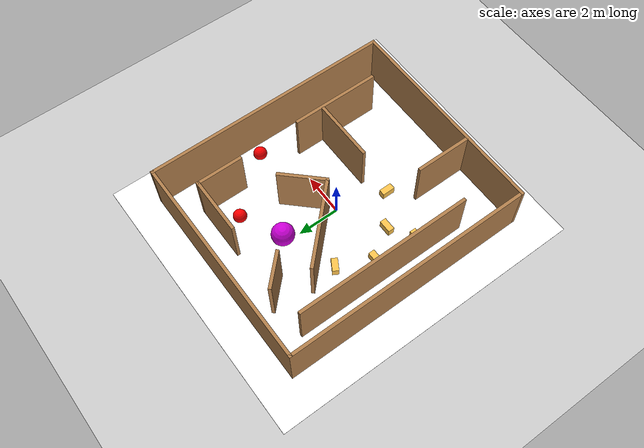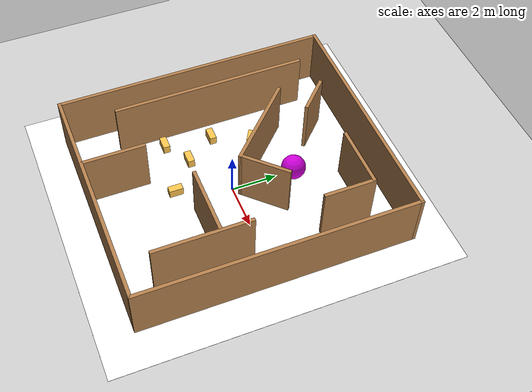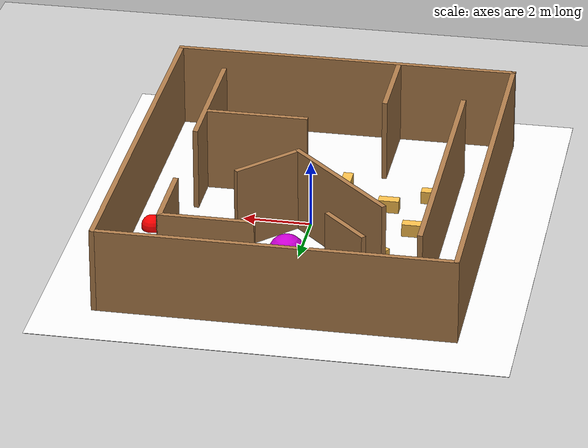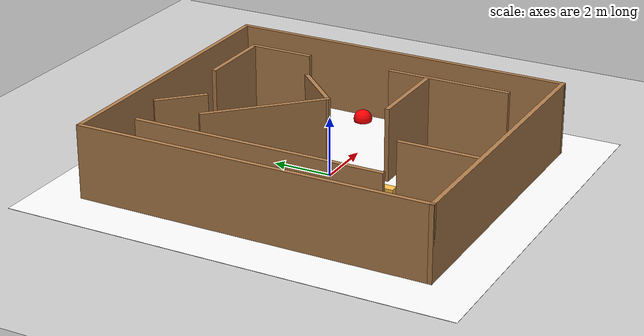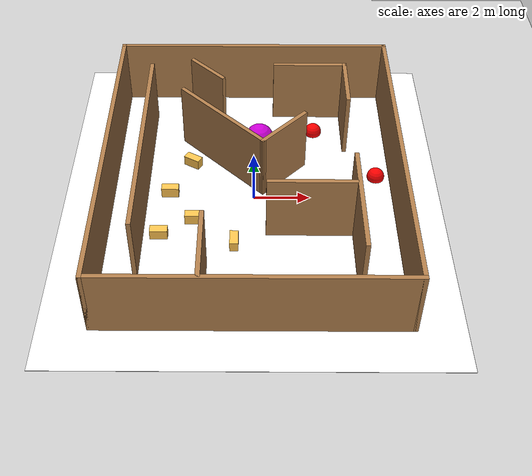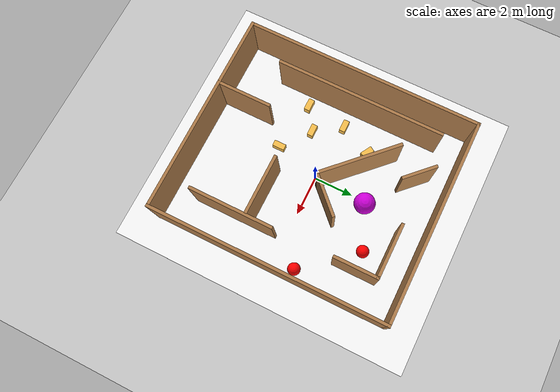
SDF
<sdf version="1.7">
 <world name="default">
  <light name="sun" type="directional">
   <pose>0 0 10 0 -0 0</pose>
   <diffuse>0.8 0.8 0.8 1</diffuse>
   <specular>0.2 0.2 0.2 1</specular>
   <attenuation>
    <range>1000</range>
    <constant>0.9</constant>
    <linear>0.01</linear>
    <quadratic>0.001</quadratic>
   </attenuation>
   <direction>-0.5 0.1 -0.9</direction>
   <spot><inner_angle>0</inner_angle><outer_angle>0</outer_angle><falloff>0</falloff></spot>
  </light>
  <model name="ground_plane">
   <static>1</static>
   <link name="link">
    <collision name="collision">
     <geometry><plane><normal>0 0 1</normal><size>100 100</size></plane></geometry>
     <surface>
      <contact><collide_bitmask>65535</collide_bitmask></contact>
      <friction><ode><mu>100</mu><mu2>50</mu2></ode></friction>
     </surface>
    </collision>
    <visual name="visual">
     <cast_shadows>0</cast_shadows>
     <geometry><plane><normal>0 0 1</normal><size>100 100</size></plane></geometry>
     <material>
      <script><uri>file://media/materials/scripts/gazebo.material</uri><name>Gazebo/Grey</name></script>
     </material>
    </visual>
   </link>
  </model>
  <gravity>0 0 -9.8</gravity>
  <magnetic_field>6e-06 2.3e-05 -4.2e-05</magnetic_field>
  <atmosphere type="adiabatic"/>
  <physics type="ode">
   <max_step_size>0.001</max_step_size>
   <real_time_factor>1</real_time_factor>
   <real_time_update_rate>1000</real_time_update_rate>
  </physics>
  <scene><ambient>0.4 0.4 0.4 1</ambient><background>0.7 0.7 0.7 1</background><shadows>1</shadows></scene>
  <spherical_coordinates>
   <surface_model>EARTH_WGS84</surface_model>
   <latitude_deg>0</latitude_deg>
   <longitude_deg>0</longitude_deg>
   <elevation>0</elevation>
   <heading_deg>0</heading_deg>
  </spherical_coordinates>
  <model name="env01">
   <pose>-0.01781 0.043684 0 0 -0 0</pose>
   <link name="Wall_0">
    <collision name="Wall_0_Collision">
     <geometry><box><size>12 0.15 2.5</size></box></geometry>
     <pose>0 0 1.25 0 -0 0</pose>
    </collision>
    <visual name="Wall_0_Visual">
     <pose>0 0 1.25 0 -0 0</pose>
     <geometry><box><size>12 0.15 2.5</size></box></geometry>
     <material>
      <script><uri>file://media/materials/scripts/gazebo.material</uri><name>Gazebo/Wood</name></script>
      <ambient>1 1 1 1</ambient>
     </material>
     <meta><layer>0</layer></meta>
    </visual>
    <pose>-5.05 -0 0 0 -0 1.5708</pose>
   </link>
   <link name="Wall_17">
    <collision name="Wall_17_Collision">
     <geometry><box><size>1.75 0.15 2.5</size></box></geometry>
     <pose>0 0 1.25 0 -0 0</pose>
    </collision>
    <visual name="Wall_17_Visual">
     <pose>0 0 1.25 0 -0 0</pose>
     <geometry><box><size>1.75 0.15 2.5</size></box></geometry>
     <material>
      <script><uri>file://media/materials/scripts/gazebo.material</uri><name>Gazebo/Wood</name></script>
      <ambient>1 1 1 1</ambient>
     </material>
     <meta><layer>0</layer></meta>
    </visual>
    <pose>-1.72956 4.38227 0 0 -0 2.35619</pose>
   </link>
   <link name="Wall_19">
    <collision name="Wall_19_Collision">
     <geometry><box><size>2.75 0.15 2.5</size></box></geometry>
     <pose>0 0 1.25 0 -0 0</pose>
    </collision>
    <visual name="Wall_19_Visual">
     <pose>0 0 1.25 0 -0 0</pose>
     <geometry><box><size>2.75 0.15 2.5</size></box></geometry>
     <material>
      <script><uri>file://media/materials/scripts/gazebo.material</uri><name>Gazebo/Wood</name></script>
      <ambient>1 1 1 1</ambient>
     </material>
     <meta><layer>0</layer></meta>
    </visual>
    <pose>2.13114 4.66779 0 0 -0 0</pose>
   </link>
   <link name="Wall_20">
    <collision name="Wall_20_Collision">
     <geometry><box><size>2.25 0.15 2.5</size></box></geometry>
     <pose>0 0 1.25 0 -0 0</pose>
    </collision>
    <visual name="Wall_20_Visual">
     <pose>0 0 1.25 0 -0 0</pose>
     <geometry><box><size>2.25 0.15 2.5</size></box></geometry>
     <material>
      <script><uri>file://media/materials/scripts/gazebo.material</uri><name>Gazebo/Wood</name></script>
      <ambient>1 1 1 1</ambient>
     </material>
     <meta><layer>0</layer></meta>
    </visual>
    <pose>3.43114 3.61779 0 0 -0 -1.5708</pose>
   </link>
   <link name="Wall_23">
    <collision name="Wall_23_Collision">
     <geometry><box><size>4.25 0.15 2.5</size></box></geometry>
     <pose>0 0 1.25 0 -0 0</pose>
    </collision>
    <visual name="Wall_23_Visual">
     <pose>0 0 1.25 0 -0 0</pose>
     <geometry><box><size>4.25 0.15 2.5</size></box></geometry>
     <material>
      <script><uri>file://media/materials/scripts/gazebo.material</uri><name>Gazebo/Wood</name></script>
      <ambient>1 1 1 1</ambient>
     </material>
     <meta><layer>0</layer></meta>
    </visual>
    <pose>-1.1089 1.64899 0 0 -0 -0.785398</pose>
   </link>
   <link name="Wall_24">
    <collision name="Wall_24_Collision">
     <geometry><box><size>2.2637 0.15 2.5</size></box></geometry>
     <pose>0 0 1.25 0 -0 0</pose>
    </collision>
    <visual name="Wall_24_Visual">
     <pose>0 0 1.25 0 -0 0</pose>
     <geometry><box><size>2.2637 0.15 2.5</size></box></geometry>
     <material>
      <script><uri>file://media/materials/scripts/gazebo.material</uri><name>Gazebo/Wood</name></script>
      <ambient>1 1 1 1</ambient>
     </material>
     <meta><layer>0</layer></meta>
    </visual>
    <pose>1.07552 0.958968 0 0 -0 0.801918</pose>
   </link>
   <link name="Wall_29">
    <collision name="Wall_29_Collision">
     <geometry><box><size>4.25 0.15 2.5</size></box></geometry>
     <pose>0 0 1.25 0 -0 0</pose>
    </collision>
    <visual name="Wall_29_Visual">
     <pose>0 0 1.25 0 -0 0</pose>
     <geometry><box><size>4.25 0.15 2.5</size></box></geometry>
     <material>
      <script><uri>file://media/materials/scripts/gazebo.material</uri><name>Gazebo/Wood</name></script>
      <ambient>1 1 1 1</ambient>
     </material>
     <meta><layer>0</layer></meta>
    </visual>
    <pose>3.49116 -2.56925 0 0 -0 -1.5708</pose>
   </link>
   <link name="Wall_3">
    <collision name="Wall_3_Collision">
     <geometry><box><size>10.25 0.15 2.5</size></box></geometry>
     <pose>0 0 1.25 0 -0 0</pose>
    </collision>
    <visual name="Wall_3_Visual">
     <pose>0 0 1.25 0 -0 0</pose>
     <geometry><box><size>10.25 0.15 2.5</size></box></geometry>
     <material>
      <script><uri>file://media/materials/scripts/gazebo.material</uri><name>Gazebo/Wood</name></script>
      <ambient>1 1 1 1</ambient>
     </material>
     <meta><layer>0</layer></meta>
    </visual>
    <pose>-0 -5.925 0 0 -0 0</pose>
   </link>
   <link name="Wall_37">
    <collision name="Wall_37_Collision">
     <geometry><box><size>3 0.15 2.5</size></box></geometry>
     <pose>0 0 1.25 0 -0 0</pose>
    </collision>
    <visual name="Wall_37_Visual">
     <pose>0 0 1.25 0 -0 0</pose>
     <geometry><box><size>3 0.15 2.5</size></box></geometry>
     <material>
      <script><uri>file://media/materials/scripts/gazebo.material</uri><name>Gazebo/Wood</name></script>
      <ambient>1 1 1 1</ambient>
     </material>
     <meta><layer>0</layer></meta>
    </visual>
    <pose>1.93931 -1.84217 0 0 -0 0</pose>
   </link>
   <link name="Wall_39">
    <collision name="Wall_39_Collision">
     <geometry><box><size>2.75 0.15 2.5</size></box></geometry>
     <pose>0 0 1.25 0 -0 0</pose>
    </collision>
    <visual name="Wall_39_Visual">
     <pose>0 0 1.25 0 -0 0</pose>
     <geometry><box><size>2.75 0.15 2.5</size></box></geometry>
     <material>
      <script><uri>file://media/materials/scripts/gazebo.material</uri><name>Gazebo/Wood</name></script>
      <ambient>1 1 1 1</ambient>
     </material>
     <meta><layer>0</layer></meta>
    </visual>
    <pose>-1.6074 -4.5784 0 0 -0 1.5708</pose>
   </link>
   <link name="Wall_5">
    <collision name="Wall_5_Collision">
     <geometry><box><size>12 0.15 2.5</size></box></geometry>
     <pose>0 0 1.25 0 -0 0</pose>
    </collision>
    <visual name="Wall_5_Visual">
     <pose>0 0 1.25 0 -0 0</pose>
     <geometry><box><size>12 0.15 2.5</size></box></geometry>
     <material>
      <script><uri>file://media/materials/scripts/gazebo.material</uri><name>Gazebo/Wood</name></script>
      <ambient>1 1 1 1</ambient>
     </material>
     <meta><layer>0</layer></meta>
    </visual>
    <pose>5.05 -0 0 0 -0 1.5708</pose>
   </link>
   <link name="Wall_6">
    <collision name="Wall_6_Collision">
     <geometry><box><size>10.25 0.15 2.5</size></box></geometry>
     <pose>0 0 1.25 0 -0 0</pose>
    </collision>
    <visual name="Wall_6_Visual">
     <pose>0 0 1.25 0 -0 0</pose>
     <geometry><box><size>10.25 0.15 2.5</size></box></geometry>
     <material>
      <script><uri>file://media/materials/scripts/gazebo.material</uri><name>Gazebo/Wood</name></script>
      <ambient>1 1 1 1</ambient>
     </material>
     <meta><layer>0</layer></meta>
    </visual>
    <pose>-0 5.925 0 0 -0 3.14159</pose>
   </link>
   <link name="Wall_8">
    <collision name="Wall_8_Collision">
     <geometry><box><size>8.5 0.15 2.5</size></box></geometry>
     <pose>0 0 1.25 0 -0 0</pose>
    </collision>
    <visual name="Wall_8_Visual">
     <pose>0 0 1.25 0 -0 0</pose>
     <geometry><box><size>8.5 0.15 2.5</size></box></geometry>
     <material>
      <script><uri>file://media/materials/scripts/gazebo.material</uri><name>Gazebo/Wood</name></script>
      <ambient>1 1 1 1</ambient>
     </material>
     <meta><layer>0</layer></meta>
    </visual>
    <pose>-3.85049 0.412989 0 0 -0 -1.5708</pose>
   </link>
   <static>1</static>
  </model>
  <model name="sphere_rv">
   <link name="link_1">
    <pose>-0.019563 0.124282 0.530075 0 -0 0</pose>
    <inertial>
     <mass>149.284</mass>
     <inertia><ixx>16.8031</ixx><ixy>0</ixy><ixz>0</ixz><iyy>16.8031</iyy><iyz>0</iyz><izz>16.8031</izz></inertia>
    </inertial>
    <visual name="visual">
     <geometry><sphere><radius>0.530467</radius></sphere></geometry>
     <material>
      <lighting>1</lighting>
      <script><uri>file://media/materials/scripts/gazebo.material</uri><name>Gazebo/Grey</name></script>
      <ambient>0.816 0 0.855 1</ambient>
      <diffuse>0.816 0 0.855 1</diffuse>
      <specular>0 0 0 1</specular>
      <emissive>0 0 0 1</emissive>
      <shader type="vertex"><normal_map>__default__</normal_map></shader>
     </material>
    </visual>
    <collision name="collision">
     <geometry><sphere><radius>0.530467</radius></sphere></geometry>
     <surface>
      <friction>
       <ode><mu>1</mu><mu2>1</mu2><fdir1>0 0 0</fdir1><slip1>0</slip1><slip2>0</slip2></ode>
       <torsional>
        <coefficient>1</coefficient>
        <patch_radius>0</patch_radius>
        <surface_radius>0</surface_radius>
        <use_patch_radius>1</use_patch_radius>
        <ode><slip>0</slip></ode>
       </torsional>
      </friction>
      <bounce><restitution_coefficient>0</restitution_coefficient><threshold>1e+06</threshold></bounce>
      <contact>
       <collide_without_contact>0</collide_without_contact>
       <collide_without_contact_bitmask>1</collide_without_contact_bitmask>
       <collide_bitmask>1</collide_bitmask>
       <ode>
        <soft_cfm>0</soft_cfm>
        <soft_erp>0.2</soft_erp>
        <kp>1e+13</kp>
        <kd>1</kd>
        <max_vel>0.01</max_vel>
        <min_depth>0</min_depth>
       </ode>
       <bullet>
        <split_impulse>1</split_impulse>
        <split_impulse_penetration_threshold>-0.01</split_impulse_penetration_threshold>
        <soft_cfm>0</soft_cfm>
        <soft_erp>0.2</soft_erp>
        <kp>1e+13</kp>
        <kd>1</kd>
       </bullet>
      </contact>
     </surface>
    </collision>
   </link>
   <static>1</static>
   <pose>0.224885 2.61242 0 0 -0 0</pose>
  </model>
  <model name="Box_24x15M">
   <link name="Wall">
    <pose>0 0 0.1985 0 -0 0</pose>
    <inertial>
     <mass>5</mass>
     <inertia><ixx>0.1022</ixx><iyy>0.2197</iyy><izz>0.1905</izz><ixy>0</ixy><ixz>0</ixz><iyz>0</iyz></inertia>
    </inertial>
    <collision name="Wall_Collision"><geometry><box><size>0.608 0.296 0.397</size></box></geometry></collision>
    <visual name="Wall_Visual">
     <geometry><box><size>0.608 0.296 0.397</size></box></geometry>
     <material>
      <script><uri>file://media/materials/scripts/gazebo.material</uri><name>Gazebo/Grey</name></script>
      <ambient>1 0.764706 0.305882 1</ambient>
     </material>
    </visual>
   </link>
   <static>1</static>
   <pose>-0.658795 -2.32043 -0 0 0 -1.57</pose>
  </model>
  <model name="Floor_white">
   <link name="main">
    <pose>0.106276 0.320284 0.01 0 -0 0</pose>
    <inertial>
     <mass>0.126387</mass>
     <inertia><ixx>2.38743</ixx><ixy>0</ixy><ixz>0</ixz><iyy>1.90008</iyy><iyz>0</iyz><izz>4.28751</izz></inertia>
    </inertial>
    <visual name="main_Visual">
     <geometry><box><size>13.4315 15.0558 0.01</size></box></geometry>
     <material>
      <script>
       <uri>model://Floor/materials/scripts</uri>
       <uri>model://Floor/materials/textures</uri>
       <name>floor</name>
      </script>
      <shader type="pixel"><normal_map>__default__</normal_map></shader>
      <ambient>1 1 1 1</ambient>
      <diffuse>1 1 1 1</diffuse>
      <specular>0 0 0 1</specular>
      <emissive>0.94 0.94 0.94 0.9</emissive>
     </material>
    </visual>
    <collision name="main_Collision">
     <geometry><box><size>13.4315 15.0558 0.01</size></box></geometry>
     <surface>
      <friction>
       <ode><mu>1</mu><mu2>1</mu2><fdir1>0 0 0</fdir1><slip1>0</slip1><slip2>0</slip2></ode>
       <torsional>
        <coefficient>1</coefficient>
        <patch_radius>0</patch_radius>
        <surface_radius>0</surface_radius>
        <use_patch_radius>1</use_patch_radius>
        <ode><slip>0</slip></ode>
       </torsional>
      </friction>
      <bounce><restitution_coefficient>0</restitution_coefficient><threshold>1e+06</threshold></bounce>
      <contact>
       <collide_without_contact>0</collide_without_contact>
       <collide_without_contact_bitmask>1</collide_without_contact_bitmask>
       <collide_bitmask>1</collide_bitmask>
       <ode>
        <soft_cfm>0</soft_cfm>
        <soft_erp>0.2</soft_erp>
        <kp>1e+13</kp>
        <kd>1</kd>
        <max_vel>0.01</max_vel>
        <min_depth>0</min_depth>
       </ode>
       <bullet>
        <split_impulse>1</split_impulse>
        <split_impulse_penetration_threshold>-0.01</split_impulse_penetration_threshold>
        <soft_cfm>0</soft_cfm>
        <soft_erp>0.2</soft_erp>
        <kp>1e+13</kp>
        <kd>1</kd>
       </bullet>
      </contact>
     </surface>
    </collision>
   </link>
   <static>1</static>
   <pose>-0.155653 -0.245625 0 0 -0 0</pose>
  </model>
  <model name="Box_24x15M_clone">
   <link name="Wall">
    <pose>0 0 0.1985 0 -0 0</pose>
    <inertial>
     <mass>5</mass>
     <inertia><ixx>0.1022</ixx><iyy>0.2197</iyy><izz>0.1905</izz><ixy>0</ixy><ixz>0</ixz><iyz>0</iyz></inertia>
    </inertial>
    <collision name="Wall_Collision"><geometry><box><size>0.608 0.296 0.397</size></box></geometry></collision>
    <visual name="Wall_Visual">
     <geometry><box><size>0.608 0.296 0.397</size></box></geometry>
     <material>
      <script><uri>file://media/materials/scripts/gazebo.material</uri><name>Gazebo/Grey</name></script>
      <ambient>1 0.764706 0.305882 1</ambient>
     </material>
    </visual>
   </link>
   <static>1</static>
   <pose>-3.24021 -1.93596 0 0 -0 0.000796</pose>
  </model>
  <model name="Box_24x15M_clone_clone">
   <link name="Wall">
    <pose>0 0 0.1985 0 -0 0</pose>
    <inertial>
     <mass>5</mass>
     <inertia><ixx>0.1022</ixx><iyy>0.2197</iyy><izz>0.1905</izz><ixy>0</ixy><ixz>0</ixz><iyz>0</iyz></inertia>
    </inertial>
    <collision name="Wall_Collision"><geometry><box><size>0.608 0.296 0.397</size></box></geometry></collision>
    <visual name="Wall_Visual">
     <geometry><box><size>0.608 0.296 0.397</size></box></geometry>
     <material>
      <script><uri>file://media/materials/scripts/gazebo.material</uri><name>Gazebo/Grey</name></script>
      <ambient>1 0.764706 0.305882 1</ambient>
     </material>
    </visual>
   </link>
   <static>1</static>
   <pose>-2.08733 -1.19871 0 0 -0 0.000796</pose>
  </model>
  <model name="Box_24x15M_clone_clone_clone">
   <link name="Wall">
    <pose>0 0 0.1985 0 -0 0</pose>
    <inertial>
     <mass>5</mass>
     <inertia><ixx>0.1022</ixx><iyy>0.2197</iyy><izz>0.1905</izz><ixy>0</ixy><ixz>0</ixz><iyz>0</iyz></inertia>
    </inertial>
    <collision name="Wall_Collision"><geometry><box><size>0.608 0.296 0.397</size></box></geometry></collision>
    <visual name="Wall_Visual">
     <geometry><box><size>0.608 0.296 0.397</size></box></geometry>
     <material>
      <script><uri>file://media/materials/scripts/gazebo.material</uri><name>Gazebo/Grey</name></script>
      <ambient>1 0.764706 0.305882 1</ambient>
     </material>
    </visual>
   </link>
   <static>1</static>
   <pose>-2.24973 1.75892 0 0 0 -0.529333</pose>
  </model>
  <model name="Box_24x15M_clone_clone_clone_0">
   <link name="Wall">
    <pose>0 0 0.1985 0 -0 0</pose>
    <inertial>
     <mass>5</mass>
     <inertia><ixx>0.1022</ixx><iyy>0.2197</iyy><izz>0.1905</izz><ixy>0</ixy><ixz>0</ixz><iyz>0</iyz></inertia>
    </inertial>
    <collision name="Wall_Collision"><geometry><box><size>0.608 0.296 0.397</size></box></geometry></collision>
    <visual name="Wall_Visual">
     <geometry><box><size>0.608 0.296 0.397</size></box></geometry>
     <material>
      <script><uri>file://media/materials/scripts/gazebo.material</uri><name>Gazebo/Grey</name></script>
      <ambient>1 0.764706 0.305882 1</ambient>
     </material>
    </visual>
   </link>
   <static>1</static>
   <pose>-2.99306 0.145822 0 0 -0 0.000796</pose>
  </model>
  <model name="sphere_r_clone">
   <link name="link_1">
    <pose>0 0 0.1 0 -0 0</pose>
    <inertial>
     <mass>31.7115</mass>
     <inertia><ixx>1.2708</ixx><ixy>0</ixy><ixz>0</ixz><iyy>1.2708</iyy><iyz>0</iyz><izz>1.2708</izz></inertia>
    </inertial>
    <visual name="visual">
     <geometry><sphere><radius>0.316519</radius></sphere></geometry>
     <material>
      <lighting>1</lighting>
      <script><uri>file://media/materials/scripts/gazebo.material</uri><name>Gazebo/Grey</name></script>
      <ambient>1 0 0 1</ambient>
      <diffuse>1 0 0 1</diffuse>
      <specular>0 0 0 1</specular>
      <emissive>0 0 0 1</emissive>
      <shader type="vertex"><normal_map>__default__</normal_map></shader>
     </material>
    </visual>
    <collision name="collision">
     <geometry><sphere><radius>0.316519</radius></sphere></geometry>
     <surface>
      <friction>
       <ode><mu>1</mu><mu2>1</mu2><fdir1>0 0 0</fdir1><slip1>0</slip1><slip2>0</slip2></ode>
       <torsional>
        <coefficient>1</coefficient>
        <patch_radius>0</patch_radius>
        <surface_radius>0</surface_radius>
        <use_patch_radius>1</use_patch_radius>
        <ode><slip>0</slip></ode>
       </torsional>
      </friction>
      <bounce><restitution_coefficient>0</restitution_coefficient><threshold>1e+06</threshold></bounce>
      <contact>
       <collide_without_contact>0</collide_without_contact>
       <collide_without_contact_bitmask>1</collide_without_contact_bitmask>
       <collide_bitmask>1</collide_bitmask>
       <ode>
        <soft_cfm>0</soft_cfm>
        <soft_erp>0.2</soft_erp>
        <kp>1e+13</kp>
        <kd>1</kd>
        <max_vel>0.01</max_vel>
        <min_depth>0</min_depth>
       </ode>
       <bullet>
        <split_impulse>1</split_impulse>
        <split_impulse_penetration_threshold>-0.01</split_impulse_penetration_threshold>
        <soft_cfm>0</soft_cfm>
        <soft_erp>0.2</soft_erp>
        <kp>1e+13</kp>
        <kd>1</kd>
       </bullet>
      </contact>
     </surface>
    </collision>
   </link>
   <static>1</static>
   <pose>2.28091 3.6334 0 0 -0 0</pose>
  </model>
  <model name="sphere_r_clone_clone">
   <link name="link_1">
    <pose>0 0 0.1 0 -0 0</pose>
    <inertial>
     <mass>31.7115</mass>
     <inertia><ixx>1.2708</ixx><ixy>0</ixy><ixz>0</ixz><iyy>1.2708</iyy><iyz>0</iyz><izz>1.2708</izz></inertia>
    </inertial>
    <visual name="visual">
     <geometry><sphere><radius>0.316519</radius></sphere></geometry>
     <material>
      <lighting>1</lighting>
      <script><uri>file://media/materials/scripts/gazebo.material</uri><name>Gazebo/Grey</name></script>
      <ambient>1 0 0 1</ambient>
      <diffuse>1 0 0 1</diffuse>
      <specular>0 0 0 1</specular>
      <emissive>0 0 0 1</emissive>
      <shader type="vertex"><normal_map>__default__</normal_map></shader>
     </material>
    </visual>
    <collision name="collision">
     <geometry><sphere><radius>0.316519</radius></sphere></geometry>
     <surface>
      <friction>
       <ode><mu>1</mu><mu2>1</mu2><fdir1>0 0 0</fdir1><slip1>0</slip1><slip2>0</slip2></ode>
       <torsional>
        <coefficient>1</coefficient>
        <patch_radius>0</patch_radius>
        <surface_radius>0</surface_radius>
        <use_patch_radius>1</use_patch_radius>
        <ode><slip>0</slip></ode>
       </torsional>
      </friction>
      <bounce><restitution_coefficient>0</restitution_coefficient><threshold>1e+06</threshold></bounce>
      <contact>
       <collide_without_contact>0</collide_without_contact>
       <collide_without_contact_bitmask>1</collide_without_contact_bitmask>
       <collide_bitmask>1</collide_bitmask>
       <ode>
        <soft_cfm>0</soft_cfm>
        <soft_erp>0.2</soft_erp>
        <kp>1e+13</kp>
        <kd>1</kd>
        <max_vel>0.01</max_vel>
        <min_depth>0</min_depth>
       </ode>
       <bullet>
        <split_impulse>1</split_impulse>
        <split_impulse_penetration_threshold>-0.01</split_impulse_penetration_threshold>
        <soft_cfm>0</soft_cfm>
        <soft_erp>0.2</soft_erp>
        <kp>1e+13</kp>
        <kd>1</kd>
       </bullet>
      </contact>
     </surface>
    </collision>
   </link>
   <static>1</static>
   <pose>4.46749 1.06129 0 0 -0 0</pose>
  </model>
 </world>
</sdf>
